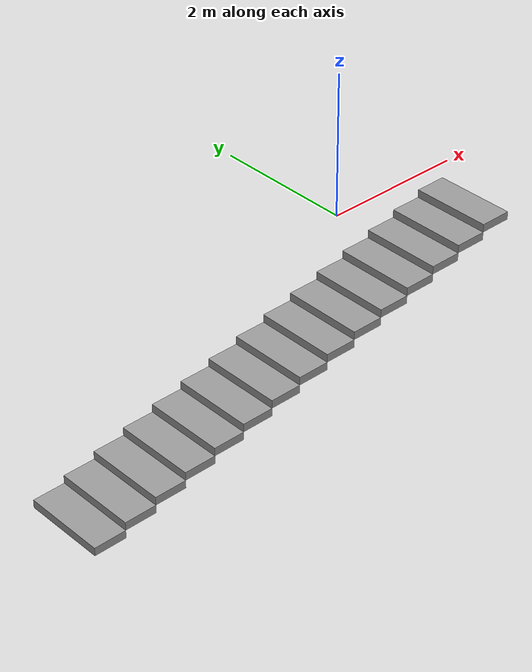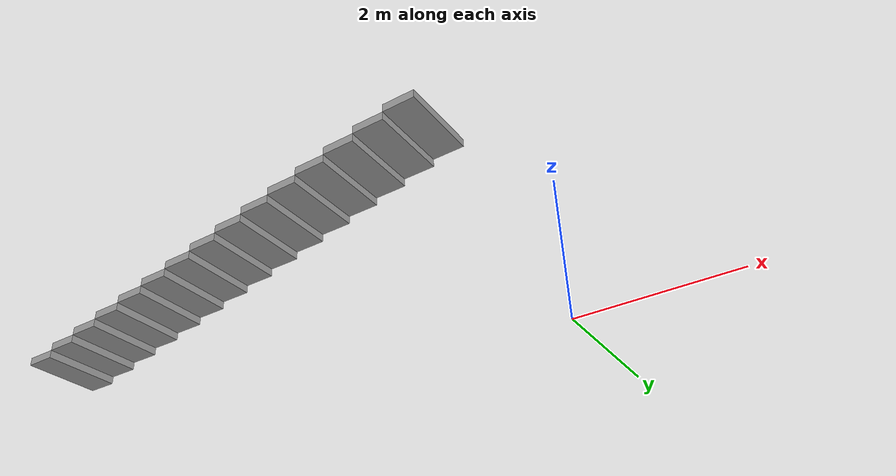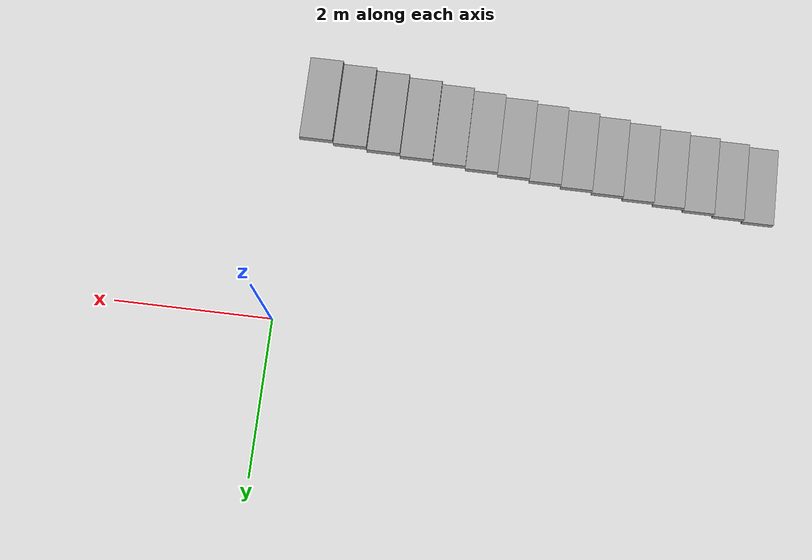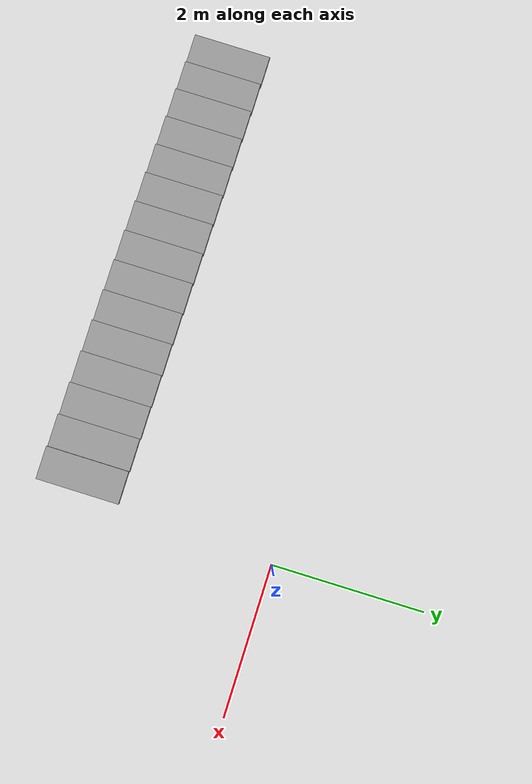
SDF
<?xml version='1.0'?>
<sdf version='1.7'>
  <model name='drok3_ex2'>
    <pose>-3.075 -1.465 0 0 -0 0</pose>
    <link name='Stairs_1'>
      <visual name='Stairs_1_Visual_0'>
        <pose>-2.87733 -0.965 0.05 0 -0 1.5708</pose>
        <geometry>
          <box>
            <size>1 0.395333 0.1</size>
          </box>
        </geometry>
        <material>
          <script>
            <uri>file://media/materials/scripts/gazebo.material</uri>
            <name>Gazebo/Grey</name>
          </script>
          <ambient>1 1 1 1</ambient>
        </material>
        <meta>
          <layer>0</layer>
        </meta>
      </visual>
      <collision name='Stairs_1_Collision_0'>
        <geometry>
          <box>
            <size>1 0.395333 0.1</size>
          </box>
        </geometry>
        <pose>-2.87733 -0.965 0.05 0 -0 1.5708</pose>
      </collision>
      <visual name='Stairs_1_Visual_1'>
        <pose>-2.482 -0.965 0.15 0 -0 1.5708</pose>
        <geometry>
          <box>
            <size>1 0.395333 0.1</size>
          </box>
        </geometry>
        <material>
          <script>
            <uri>file://media/materials/scripts/gazebo.material</uri>
            <name>Gazebo/Grey</name>
          </script>
          <ambient>1 1 1 1</ambient>
        </material>
        <meta>
          <layer>0</layer>
        </meta>
      </visual>
      <collision name='Stairs_1_Collision_1'>
        <geometry>
          <box>
            <size>1 0.395333 0.1</size>
          </box>
        </geometry>
        <pose>-2.482 -0.965 0.15 0 -0 1.5708</pose>
      </collision>
      <visual name='Stairs_1_Visual_2'>
        <pose>-2.08667 -0.965 0.25 0 -0 1.5708</pose>
        <geometry>
          <box>
            <size>1 0.395333 0.1</size>
          </box>
        </geometry>
        <material>
          <script>
            <uri>file://media/materials/scripts/gazebo.material</uri>
            <name>Gazebo/Grey</name>
          </script>
          <ambient>1 1 1 1</ambient>
        </material>
        <meta>
          <layer>0</layer>
        </meta>
      </visual>
      <collision name='Stairs_1_Collision_2'>
        <geometry>
          <box>
            <size>1 0.395333 0.1</size>
          </box>
        </geometry>
        <pose>-2.08667 -0.965 0.25 0 -0 1.5708</pose>
      </collision>
      <visual name='Stairs_1_Visual_3'>
        <pose>-1.69133 -0.965 0.35 0 -0 1.5708</pose>
        <geometry>
          <box>
            <size>1 0.395333 0.1</size>
          </box>
        </geometry>
        <material>
          <script>
            <uri>file://media/materials/scripts/gazebo.material</uri>
            <name>Gazebo/Grey</name>
          </script>
          <ambient>1 1 1 1</ambient>
        </material>
        <meta>
          <layer>0</layer>
        </meta>
      </visual>
      <collision name='Stairs_1_Collision_3'>
        <geometry>
          <box>
            <size>1 0.395333 0.1</size>
          </box>
        </geometry>
        <pose>-1.69133 -0.965 0.35 0 -0 1.5708</pose>
      </collision>
      <visual name='Stairs_1_Visual_4'>
        <pose>-1.296 -0.965 0.45 0 -0 1.5708</pose>
        <geometry>
          <box>
            <size>1 0.395333 0.1</size>
          </box>
        </geometry>
        <material>
          <script>
            <uri>file://media/materials/scripts/gazebo.material</uri>
            <name>Gazebo/Grey</name>
          </script>
          <ambient>1 1 1 1</ambient>
        </material>
        <meta>
          <layer>0</layer>
        </meta>
      </visual>
      <collision name='Stairs_1_Collision_4'>
        <geometry>
          <box>
            <size>1 0.395333 0.1</size>
          </box>
        </geometry>
        <pose>-1.296 -0.965 0.45 0 -0 1.5708</pose>
      </collision>
      <visual name='Stairs_1_Visual_5'>
        <pose>-0.900667 -0.965 0.55 0 -0 1.5708</pose>
        <geometry>
          <box>
            <size>1 0.395333 0.1</size>
          </box>
        </geometry>
        <material>
          <script>
            <uri>file://media/materials/scripts/gazebo.material</uri>
            <name>Gazebo/Grey</name>
          </script>
          <ambient>1 1 1 1</ambient>
        </material>
        <meta>
          <layer>0</layer>
        </meta>
      </visual>
      <collision name='Stairs_1_Collision_5'>
        <geometry>
          <box>
            <size>1 0.395333 0.1</size>
          </box>
        </geometry>
        <pose>-0.900667 -0.965 0.55 0 -0 1.5708</pose>
      </collision>
      <visual name='Stairs_1_Visual_6'>
        <pose>-0.505333 -0.965 0.65 0 -0 1.5708</pose>
        <geometry>
          <box>
            <size>1 0.395333 0.1</size>
          </box>
        </geometry>
        <material>
          <script>
            <uri>file://media/materials/scripts/gazebo.material</uri>
            <name>Gazebo/Grey</name>
          </script>
          <ambient>1 1 1 1</ambient>
        </material>
        <meta>
          <layer>0</layer>
        </meta>
      </visual>
      <collision name='Stairs_1_Collision_6'>
        <geometry>
          <box>
            <size>1 0.395333 0.1</size>
          </box>
        </geometry>
        <pose>-0.505333 -0.965 0.65 0 -0 1.5708</pose>
      </collision>
      <visual name='Stairs_1_Visual_7'>
        <pose>-0.11 -0.965 0.75 0 -0 1.5708</pose>
        <geometry>
          <box>
            <size>1 0.395333 0.1</size>
          </box>
        </geometry>
        <material>
          <script>
            <uri>file://media/materials/scripts/gazebo.material</uri>
            <name>Gazebo/Grey</name>
          </script>
          <ambient>1 1 1 1</ambient>
        </material>
        <meta>
          <layer>0</layer>
        </meta>
      </visual>
      <collision name='Stairs_1_Collision_7'>
        <geometry>
          <box>
            <size>1 0.395333 0.1</size>
          </box>
        </geometry>
        <pose>-0.11 -0.965 0.75 0 -0 1.5708</pose>
      </collision>
      <visual name='Stairs_1_Visual_8'>
        <pose>0.285333 -0.965 0.85 0 -0 1.5708</pose>
        <geometry>
          <box>
            <size>1 0.395333 0.1</size>
          </box>
        </geometry>
        <material>
          <script>
            <uri>file://media/materials/scripts/gazebo.material</uri>
            <name>Gazebo/Grey</name>
          </script>
          <ambient>1 1 1 1</ambient>
        </material>
        <meta>
          <layer>0</layer>
        </meta>
      </visual>
      <collision name='Stairs_1_Collision_8'>
        <geometry>
          <box>
            <size>1 0.395333 0.1</size>
          </box>
        </geometry>
        <pose>0.285333 -0.965 0.85 0 -0 1.5708</pose>
      </collision>
      <visual name='Stairs_1_Visual_9'>
        <pose>0.680667 -0.965 0.95 0 -0 1.5708</pose>
        <geometry>
          <box>
            <size>1 0.395333 0.1</size>
          </box>
        </geometry>
        <material>
          <script>
            <uri>file://media/materials/scripts/gazebo.material</uri>
            <name>Gazebo/Grey</name>
          </script>
          <ambient>1 1 1 1</ambient>
        </material>
        <meta>
          <layer>0</layer>
        </meta>
      </visual>
      <collision name='Stairs_1_Collision_9'>
        <geometry>
          <box>
            <size>1 0.395333 0.1</size>
          </box>
        </geometry>
        <pose>0.680667 -0.965 0.95 0 -0 1.5708</pose>
      </collision>
      <visual name='Stairs_1_Visual_10'>
        <pose>1.076 -0.965 1.05 0 -0 1.5708</pose>
        <geometry>
          <box>
            <size>1 0.395333 0.1</size>
          </box>
        </geometry>
        <material>
          <script>
            <uri>file://media/materials/scripts/gazebo.material</uri>
            <name>Gazebo/Grey</name>
          </script>
          <ambient>1 1 1 1</ambient>
        </material>
        <meta>
          <layer>0</layer>
        </meta>
      </visual>
      <collision name='Stairs_1_Collision_10'>
        <geometry>
          <box>
            <size>1 0.395333 0.1</size>
          </box>
        </geometry>
        <pose>1.076 -0.965 1.05 0 -0 1.5708</pose>
      </collision>
      <visual name='Stairs_1_Visual_11'>
        <pose>1.47133 -0.965 1.15 0 -0 1.5708</pose>
        <geometry>
          <box>
            <size>1 0.395333 0.1</size>
          </box>
        </geometry>
        <material>
          <script>
            <uri>file://media/materials/scripts/gazebo.material</uri>
            <name>Gazebo/Grey</name>
          </script>
          <ambient>1 1 1 1</ambient>
        </material>
        <meta>
          <layer>0</layer>
        </meta>
      </visual>
      <collision name='Stairs_1_Collision_11'>
        <geometry>
          <box>
            <size>1 0.395333 0.1</size>
          </box>
        </geometry>
        <pose>1.47133 -0.965 1.15 0 -0 1.5708</pose>
      </collision>
      <visual name='Stairs_1_Visual_12'>
        <pose>1.86667 -0.965 1.25 0 -0 1.5708</pose>
        <geometry>
          <box>
            <size>1 0.395333 0.1</size>
          </box>
        </geometry>
        <material>
          <script>
            <uri>file://media/materials/scripts/gazebo.material</uri>
            <name>Gazebo/Grey</name>
          </script>
          <ambient>1 1 1 1</ambient>
        </material>
        <meta>
          <layer>0</layer>
        </meta>
      </visual>
      <collision name='Stairs_1_Collision_12'>
        <geometry>
          <box>
            <size>1 0.395333 0.1</size>
          </box>
        </geometry>
        <pose>1.86667 -0.965 1.25 0 -0 1.5708</pose>
      </collision>
      <visual name='Stairs_1_Visual_13'>
        <pose>2.262 -0.964999 1.35 0 -0 1.5708</pose>
        <geometry>
          <box>
            <size>1 0.395333 0.1</size>
          </box>
        </geometry>
        <material>
          <script>
            <uri>file://media/materials/scripts/gazebo.material</uri>
            <name>Gazebo/Grey</name>
          </script>
          <ambient>1 1 1 1</ambient>
        </material>
        <meta>
          <layer>0</layer>
        </meta>
      </visual>
      <collision name='Stairs_1_Collision_13'>
        <geometry>
          <box>
            <size>1 0.395333 0.1</size>
          </box>
        </geometry>
        <pose>2.262 -0.964999 1.35 0 -0 1.5708</pose>
      </collision>
      <visual name='Stairs_1_Visual_14'>
        <pose>2.65733 -0.965 1.45 0 -0 1.5708</pose>
        <geometry>
          <box>
            <size>1 0.395333 0.1</size>
          </box>
        </geometry>
        <material>
          <script>
            <uri>file://media/materials/scripts/gazebo.material</uri>
            <name>Gazebo/Grey</name>
          </script>
          <ambient>1 1 1 1</ambient>
        </material>
        <meta>
          <layer>0</layer>
        </meta>
      </visual>
      <collision name='Stairs_1_Collision_14'>
        <geometry>
          <box>
            <size>1 0.395333 0.1</size>
          </box>
        </geometry>
        <pose>2.65733 -0.965 1.45 0 -0 1.5708</pose>
      </collision>
    </link>
    <static>1</static>
  </model>
</sdf>
